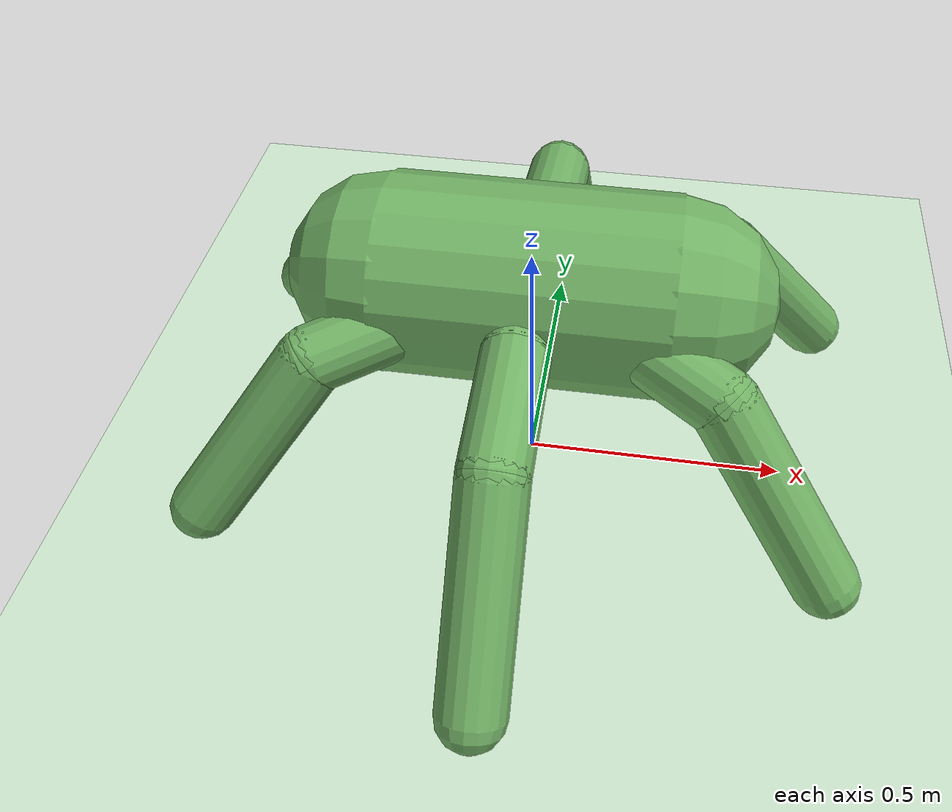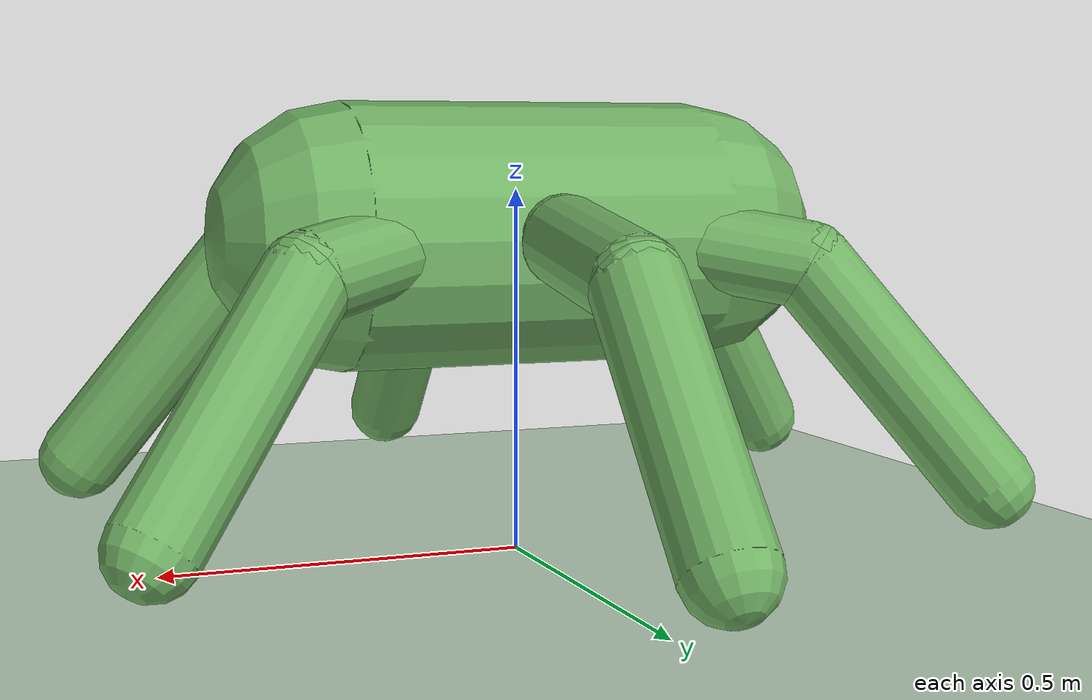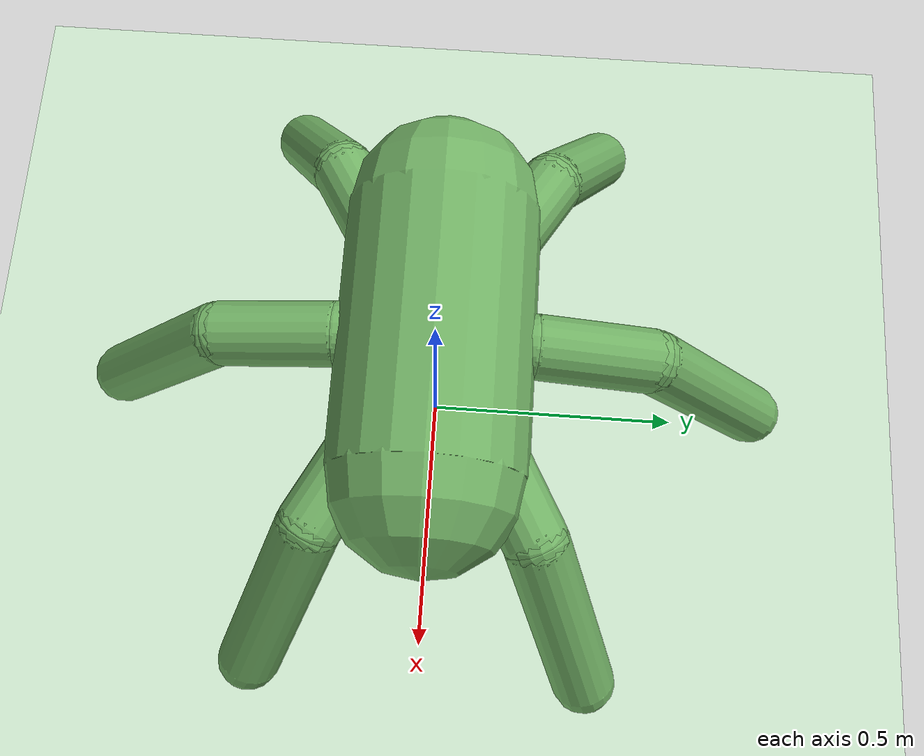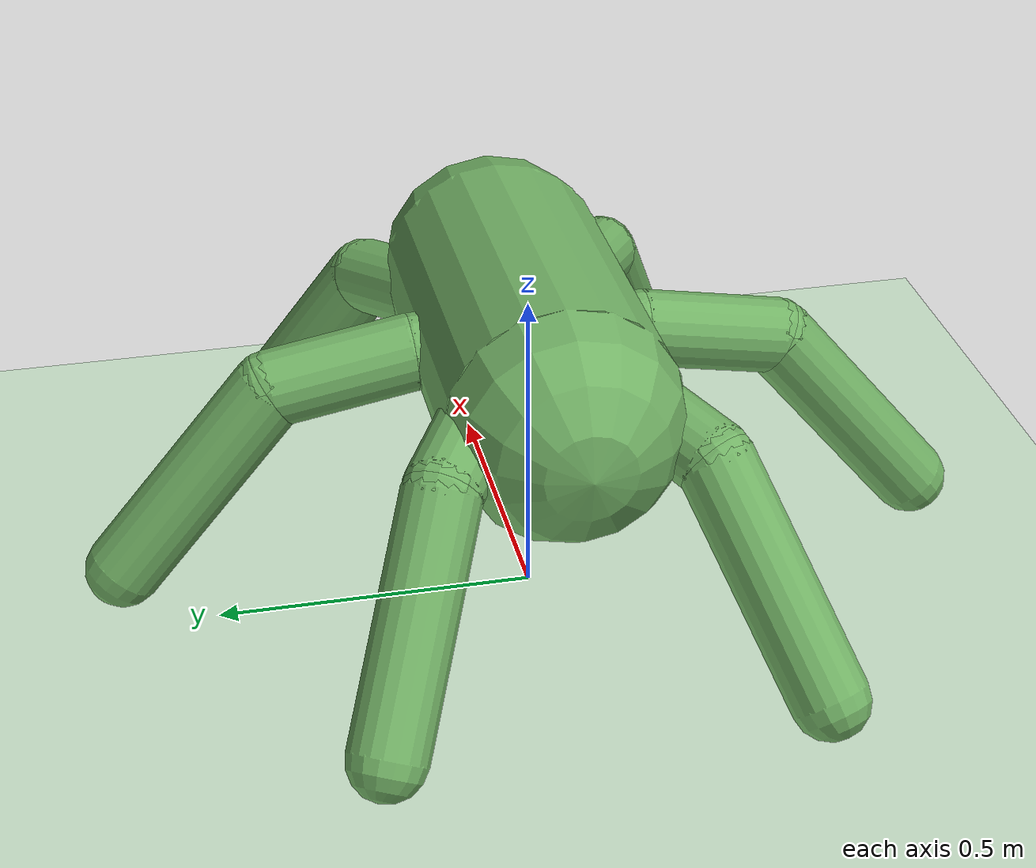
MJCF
<mujoco model="hexapod">
  <compiler angle="radian"/>

  <option timestep="0.01" integrator="RK4"/>

  <default>
    <joint limited="true" armature="1" damping="1"/>
    <geom conaffinity="0" friction="1 0.5 0.5" margin="0.01" density="5" rgba="0.45 0.7 0.4 1"/>
  </default>

  <asset>
    <texture type="skybox" colorspace="auto" name="sky" builtin="gradient" rgb1="1 1 1" rgb2="0 0 0" width="100" height="600"/>
    <texture type="2d" colorspace="auto" name="texplane" builtin="checker" rgb1="0 0 0" rgb2="0.8 0.8 0.8" width="100" height="100"/>
    <material name="MatPlane" texture="texplane" texrepeat="60 60" specular="1" shininess="1" reflectance="0.5"/>
  </asset>

  <worldbody>
    <geom name="floor" size="40 40 40" type="plane" conaffinity="1" material="MatPlane" rgba="0.8 0.9 0.8 1"/>
    <light pos="0 0 1.3" dir="0 0 -1" type="directional" cutoff="100" diffuse="1 1 1" specular="0.1 0.1 0.1"/>
    <body name="torso" pos="0 0 0.439299">
      <joint name="root" type="free" margin="0.01" armature="0" damping="0"/>
      <geom name="torso_geom" size="0.18 0.25" quat="0.707107 0 -0.707107 0" type="capsule"/>
      <camera name="track" pos="0 -3 0.3" quat="0.707107 0.707107 0 0" mode="trackcom"/>
      <body name="leg1">
        <geom name="leg1_mount_geom" size="0.06 0.09" pos="0.0779423 0.045 0" quat="0.707107 0.353553 -0.612372 0" type="capsule"/>
        <body name="leg1_seg1" pos="0.155885 0.09 0">
          <joint name="leg1_seg1_joint" pos="0 0 0" axis="0 0 1" range="-0.610865 0.610865"/>
          <geom name="leg1_seg1_geom" size="0.06 0.11" pos="0.0938155 0.0541644 -0.0191013" quat="0.766044 0.321394 -0.55667 0" type="capsule"/>
          <body name="leg1_seg2" pos="0.187631 0.108329 -0.0382026">
            <joint name="leg1_seg2_joint" pos="0 0 0" axis="-0.5 0.866025 0" range="-0.785398 0.785398"/>
            <geom name="leg1_seg2_geom" size="0.06 0.19" pos="0.105767 0.0610648 -0.145548" quat="0.939693 0.17101 -0.296198 0" type="capsule"/>
          </body>
        </body>
      </body>
      <body name="leg2">
        <geom name="leg2_mount_geom" size="0.06 0.09" pos="0 0.09 0" quat="0.707107 0.707107 0 0" type="capsule"/>
        <body name="leg2_seg1" pos="0 0.18 0">
          <joint name="leg2_seg1_joint" pos="0 0 0" axis="0 0 1" range="-0.610865 0.610865"/>
          <geom name="leg2_seg1_geom" size="0.06 0.11" pos="0 0.108329 -0.0191013" quat="0.766044 0.642788 0 0" type="capsule"/>
          <body name="leg2_seg2" pos="0 0.216658 -0.0382026">
            <joint name="leg2_seg2_joint" pos="0 0 0" axis="-1 0 0" range="-0.785398 0.785398"/>
            <geom name="leg2_seg2_geom" size="0.06 0.19" pos="0 0.12213 -0.145548" quat="0.939693 0.34202 0 0" type="capsule"/>
          </body>
        </body>
      </body>
      <body name="leg3">
        <geom name="leg3_mount_geom" size="0.06 0.09" pos="-0.0779423 0.045 0" quat="0.707107 0.353553 0.612372 0" type="capsule"/>
        <body name="leg3_seg1" pos="-0.155885 0.09 0">
          <joint name="leg3_seg1_joint" pos="0 0 0" axis="0 0 1" range="-0.610865 0.610865"/>
          <geom name="leg3_seg1_geom" size="0.06 0.11" pos="-0.0938155 0.0541644 -0.0191013" quat="0.766044 0.321394 0.55667 0" type="capsule"/>
          <body name="leg3_seg2" pos="-0.187631 0.108329 -0.0382026">
            <joint name="leg3_seg2_joint" pos="0 0 0" axis="-0.5 -0.866025 0" range="-0.785398 0.785398"/>
            <geom name="leg3_seg2_geom" size="0.06 0.19" pos="-0.105767 0.0610648 -0.145548" quat="0.939693 0.17101 0.296198 0" type="capsule"/>
          </body>
        </body>
      </body>
      <body name="leg4">
        <geom name="leg4_mount_geom" size="0.06 0.09" pos="-0.0779423 -0.045 0" quat="0.707107 -0.353553 0.612372 0" type="capsule"/>
        <body name="leg4_seg1" pos="-0.155885 -0.09 0">
          <joint name="leg4_seg1_joint" pos="0 0 0" axis="0 0 1" range="-0.610865 0.610865"/>
          <geom name="leg4_seg1_geom" size="0.06 0.11" pos="-0.0938155 -0.0541644 -0.0191013" quat="0.766044 -0.321394 0.55667 0" type="capsule"/>
          <body name="leg4_seg2" pos="-0.187631 -0.108329 -0.0382026">
            <joint name="leg4_seg2_joint" pos="0 0 0" axis="0.5 -0.866025 0" range="-0.785398 0.785398"/>
            <geom name="leg4_seg2_geom" size="0.06 0.19" pos="-0.105767 -0.0610648 -0.145548" quat="0.939693 -0.17101 0.296198 0" type="capsule"/>
          </body>
        </body>
      </body>
      <body name="leg5">
        <geom name="leg5_mount_geom" size="0.06 0.09" pos="0 -0.09 0" quat="0.707107 -0.707107 0 0" type="capsule"/>
        <body name="leg5_seg1" pos="0 -0.18 0">
          <joint name="leg5_seg1_joint" pos="0 0 0" axis="0 0 1" range="-0.610865 0.610865"/>
          <geom name="leg5_seg1_geom" size="0.06 0.11" pos="0 -0.108329 -0.0191013" quat="0.766044 -0.642788 0 0" type="capsule"/>
          <body name="leg5_seg2" pos="0 -0.216658 -0.0382026">
            <joint name="leg5_seg2_joint" pos="0 0 0" axis="1 0 0" range="-0.785398 0.785398"/>
            <geom name="leg5_seg2_geom" size="0.06 0.19" pos="0 -0.12213 -0.145548" quat="0.939693 -0.34202 0 0" type="capsule"/>
          </body>
        </body>
      </body>
      <body name="leg6">
        <geom name="leg6_mount_geom" size="0.06 0.09" pos="0.0779423 -0.045 0" quat="0.707107 -0.353553 -0.612372 0" type="capsule"/>
        <body name="leg6_seg1" pos="0.155885 -0.09 0">
          <joint name="leg6_seg1_joint" pos="0 0 0" axis="0 0 1" range="-0.610865 0.610865"/>
          <geom name="leg6_seg1_geom" size="0.06 0.11" pos="0.0938155 -0.0541644 -0.0191013" quat="0.766044 -0.321394 -0.55667 0" type="capsule"/>
          <body name="leg6_seg2" pos="0.187631 -0.108329 -0.0382026">
            <joint name="leg6_seg2_joint" pos="0 0 0" axis="0.5 0.866025 0" range="-0.785398 0.785398"/>
            <geom name="leg6_seg2_geom" size="0.06 0.19" pos="0.105767 -0.0610648 -0.145548" quat="0.939693 -0.17101 -0.296198 0" type="capsule"/>
          </body>
        </body>
      </body>
    </body>
  </worldbody>

  <actuator>
    <general name="leg1_seg1_motor" joint="leg1_seg1_joint" ctrllimited="true" ctrlrange="-1 1" gear="120 0 0 0 0 0"/>
    <general name="leg1_seg2_motor" joint="leg1_seg2_joint" ctrllimited="true" ctrlrange="-1 1" gear="120 0 0 0 0 0"/>
    <general name="leg2_seg1_motor" joint="leg2_seg1_joint" ctrllimited="true" ctrlrange="-1 1" gear="120 0 0 0 0 0"/>
    <general name="leg2_seg2_motor" joint="leg2_seg2_joint" ctrllimited="true" ctrlrange="-1 1" gear="120 0 0 0 0 0"/>
    <general name="leg3_seg1_motor" joint="leg3_seg1_joint" ctrllimited="true" ctrlrange="-1 1" gear="120 0 0 0 0 0"/>
    <general name="leg3_seg2_motor" joint="leg3_seg2_joint" ctrllimited="true" ctrlrange="-1 1" gear="120 0 0 0 0 0"/>
    <general name="leg4_seg1_motor" joint="leg4_seg1_joint" ctrllimited="true" ctrlrange="-1 1" gear="120 0 0 0 0 0"/>
    <general name="leg4_seg2_motor" joint="leg4_seg2_joint" ctrllimited="true" ctrlrange="-1 1" gear="120 0 0 0 0 0"/>
    <general name="leg5_seg1_motor" joint="leg5_seg1_joint" ctrllimited="true" ctrlrange="-1 1" gear="120 0 0 0 0 0"/>
    <general name="leg5_seg2_motor" joint="leg5_seg2_joint" ctrllimited="true" ctrlrange="-1 1" gear="120 0 0 0 0 0"/>
    <general name="leg6_seg1_motor" joint="leg6_seg1_joint" ctrllimited="true" ctrlrange="-1 1" gear="120 0 0 0 0 0"/>
    <general name="leg6_seg2_motor" joint="leg6_seg2_joint" ctrllimited="true" ctrlrange="-1 1" gear="120 0 0 0 0 0"/>
  </actuator>
</mujoco>
